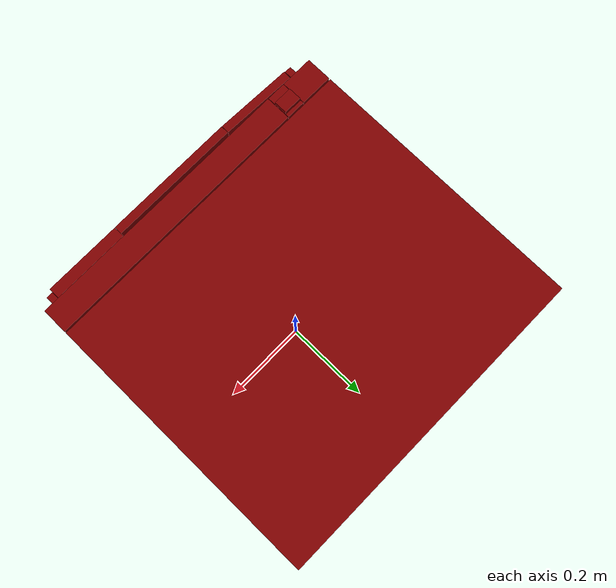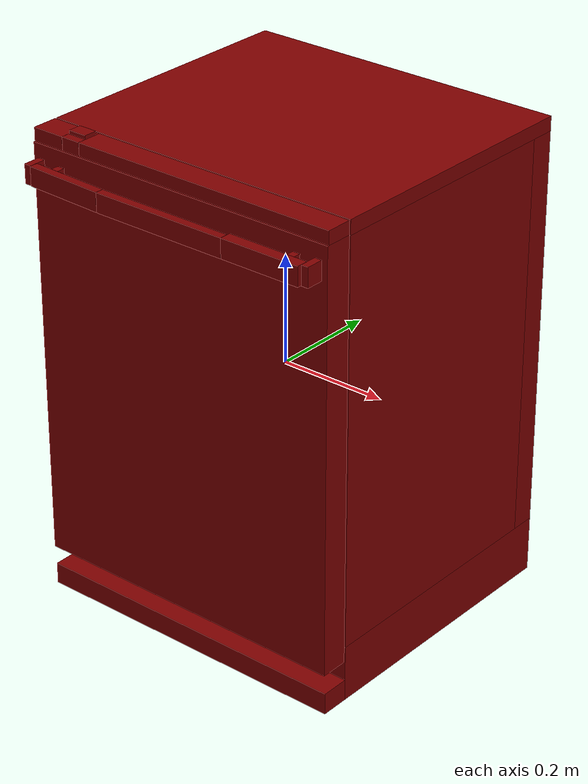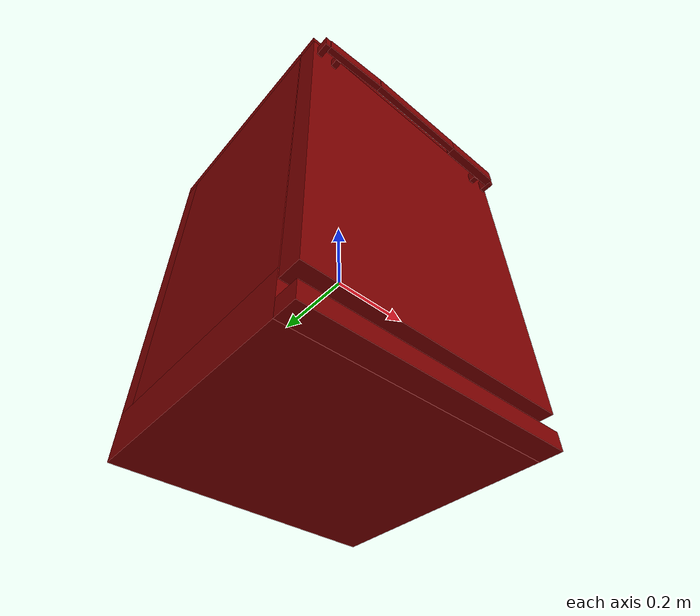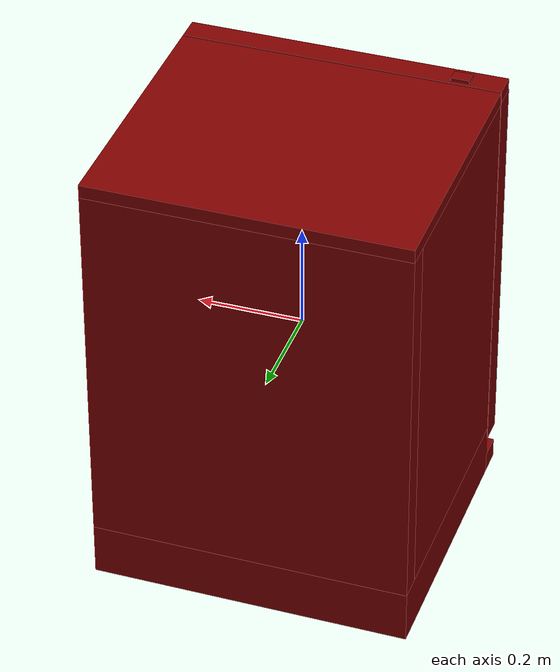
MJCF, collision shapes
<mujoco model="model">
  <compiler angle="radian"/>
  <asset>
    <mesh file="visuals/Body001.obj" name="Body001_vis"/>
    <mesh file="visuals/Button001.obj" name="Button001_vis"/>
    <mesh file="visuals/Container001.obj" name="Container001_vis"/>
    <mesh file="visuals/Container002.obj" name="Container002_vis"/>
    <mesh file="visuals/Door001.obj" name="Door001_vis"/>
    <mesh file="visuals/Handle001.obj" name="Handle001_vis"/>
    <texture file="visuals/T_BC001.png" name="Body001_material" type="2d"/>
    <material name="Body001_material" rgba="1 1 1 1.0" texture="Body001_material" shininess="0.4472135901451111" specular="0.3103448502657381"/>
    <texture file="visuals/T_BC001.png" name="Container001_material" type="2d"/>
    <material name="Container001_material" rgba="1 1 1 1.0" texture="Container001_material" shininess="0.4472135901451111" specular="0.3103448502657381"/>
    <texture file="visuals/T_BC001.png" name="Container002_material" type="2d"/>
    <material name="Container002_material" rgba="1 1 1 1.0" texture="Container002_material" shininess="0.4472135901451111" specular="0.3103448502657381"/>
    <texture file="visuals/T_BC001.png" name="Door001_material" type="2d"/>
    <material name="Door001_material" rgba="1 1 1 1.0" texture="Door001_material" shininess="0.4472135901451111" specular="0.3103448502657381"/>
    <texture file="visuals/T_BC001.png" name="Button001_material" type="2d"/>
    <material name="Button001_material" rgba="1 1 1 1.0" texture="Button001_material" shininess="0.4472135901451111" specular="0.3103448502657381"/>
    <texture file="visuals/T_BC001.png" name="Handle001_material" type="2d"/>
    <material name="Handle001_material" rgba="1 1 1 1.0" texture="Handle001_material" shininess="0.4472135901451111" specular="0.3103448502657381"/>
  </asset>
  <default>
    <default class="visual">
      <geom conaffinity="0" contype="0" group="1" type="mesh"/>
    </default>
    <default class="collision">
      <geom group="0" rgba="0.5 0 0 0.5"/>
    </default>
    <default class="spawn">
      <geom group="0" rgba="1 1 1 0.5" contype="0" conaffinity="0"/>
      <site group="0" rgba="1 1 1 0.5"/>
    </default>
    <default class="region">
      <geom group="1" conaffinity="0" contype="0" rgba="0 1 0 0"/>
    </default>
  </default>
  <worldbody>
    <body>
      <body name="object">
        <geom mesh="Body001_vis" type="mesh" solimp="0.998 0.998 0.001" solref="0.001 1" density="100" friction="0.95 0.3 0.1" class="visual" material="Body001_material"/>
        <geom class="collision" type="box" pos="0.000000 0.046589 -0.382991" size="0.30250000953674316 0.2580483555793762 0.051565688103437424" quat="1.0 0.0 0.0 0.0"/>
        <geom class="collision" type="box" pos="0.000000 -0.236857 -0.414884" size="0.30250000953674316 0.02539755403995514 0.019671276211738586" quat="1.0 0.0 0.0 0.0"/>
        <geom class="collision" type="box" pos="0.000000 0.046589 0.415111" size="0.30250000953674316 0.2580483555793762 0.013000245206058025" quat="1.0 0.0 0.0 0.0"/>
        <geom class="collision" type="box" pos="0.000000 0.281730 0.035343" size="0.30250000953674316 0.02290758490562439 0.366775780916214" quat="1.0 0.0 0.0 0.0"/>
        <geom class="collision" type="box" pos="-0.289000 0.023582 0.035343" size="0.013499995693564415 0.23523996770381927 0.3667754828929901" quat="1.0 0.0 0.0 0.0"/>
        <geom class="collision" type="box" pos="0.289000 0.023582 0.035343" size="0.013499986380338669 0.23523996770381927 0.36677518486976624" quat="1.0 0.0 0.0 0.0"/>
        <body name="Container001">
          <joint axis="0.0 -1.0 0.0" pos="0.000000 0.029861 0.205880" limited="true" name="Container001_joint" range="0.0 0.3" type="slide" damping="1" frictionloss="1" armature=".01" stiffness="0.05"/>
          <geom mesh="Container001_vis" type="mesh" solimp="0.998 0.998 0.001" solref="0.001 1" density="100" friction="0.95 0.3 0.1" class="visual" material="Container001_material"/>
          <geom class="collision" type="box" pos="-0.258727 0.030196 0.217380" size="0.008707686327397823 0.21144571900367737 0.04207874462008476" quat="1.0 0.0 0.0 0.0"/>
          <geom class="collision" type="box" pos="0.258727 0.030196 0.217380" size="0.008707686327397823 0.21144571900367737 0.04207874462008476" quat="1.0 0.0 0.0 0.0"/>
          <geom class="collision" type="box" pos="-0.000000 0.029861 0.164404" size="0.2668638825416565 0.2117791473865509 0.010897202417254448" quat="1.0 0.0 0.0 0.0"/>
          <geom class="collision" type="box" pos="0.000000 0.231723 0.217380" size="0.25001880526542664 0.008707697503268719 0.04207874462008476" quat="1.0 0.0 0.0 0.0"/>
          <geom class="collision" type="box" pos="0.000000 -0.172030 0.217380" size="0.25001880526542664 0.008707697503268719 0.04207874462008476" quat="1.0 0.0 0.0 0.0"/>
        </body>
        <body name="Container002">
          <joint axis="0.0 -1.0 0.0" pos="0.000000 0.029861 -0.046931" limited="true" name="Container002_joint" range="0.0 0.18" type="slide" damping="1" frictionloss="1" armature=".01" stiffness="0.05"/>
          <geom mesh="Container002_vis" type="mesh" solimp="0.998 0.998 0.001" solref="0.001 1" density="100" friction="0.95 0.3 0.1" class="visual" material="Container002_material"/>
          <geom class="collision" type="box" pos="0.000000 -0.172030 -0.035367" size="0.25001880526542664 0.008707697503268719 0.04207874462008476" quat="1.0 0.0 0.0 0.0"/>
          <geom class="collision" type="box" pos="0.000000 0.231723 -0.035367" size="0.25001880526542664 0.008707697503268719 0.04207874462008476" quat="1.0 0.0 0.0 0.0"/>
          <geom class="collision" type="box" pos="-0.000000 0.029861 -0.088343" size="0.2668643891811371 0.21177954971790314 0.010897227562963963" quat="1.0 0.0 0.0 0.0"/>
          <geom class="collision" type="box" pos="0.258727 0.030196 -0.035367" size="0.008707686327397823 0.21144571900367737 0.04207874462008476" quat="1.0 0.0 0.0 0.0"/>
          <geom class="collision" type="box" pos="-0.258727 0.030196 -0.035367" size="0.008707686327397823 0.21144571900367737 0.04207874462008476" quat="1.0 0.0 0.0 0.0"/>
        </body>
        <body name="Door001">
          <joint axis="1.0 0.0 0.0" pos="0.000000 -0.213533 -0.358367" limited="true" name="Door001_joint" range="0.0 0.5235987755982988" type="hinge" damping="1" frictionloss="1" armature=".01" stiffness="2" springref="-5"/>
          <geom mesh="Door001_vis" type="mesh" solimp="0.998 0.998 0.001" solref="0.001 1" density="100" friction="0.95 0.3 0.1" class="visual" material="Door001_material"/>
          <geom class="collision" type="box" pos="0.000000 -0.239846 0.022851" size="0.30250000953674316 0.025127923116087914 0.381262868642807" quat="1.0 0.0 0.0 0.0"/>
          <geom class="collision" type="box" pos="0.049053 -0.238369 0.416055" size="0.25344666838645935 0.02365121990442276 0.012054849416017532" quat="1.0 0.0 0.0 0.0"/>
          <geom class="collision" type="box" pos="-0.271880 -0.238369 0.416055" size="0.03062000870704651 0.02365121990442276 0.01205484103411436" quat="1.0 0.0 0.0 0.0"/>
          <geom class="collision" type="box" pos="-0.222871 -0.217959 0.416055" size="0.017939982935786247 0.003241129219532013 0.012054831720888615" quat="1.0 0.0 0.0 0.0"/>
          <geom class="collision" type="box" pos="-0.222871 -0.254440 0.416055" size="0.017939982935786247 0.00758080929517746 0.012054822407662868" quat="1.0 0.0 0.0 0.0"/>
          <body name="Button001">
            <joint axis="0.0 0.0 -1.0" pos="-0.222603 -0.234002 0.430914" limited="true" name="Button001_joint" range="0.0 0.005" type="slide" damping="1" frictionloss="1" armature=".01" stiffness="0.1" springref="-1"/>
            <geom mesh="Button001_vis" type="mesh" solimp="0.998 0.998 0.001" solref="0.001 1" density="100" friction="0.95 0.3 0.1" class="visual" material="Button001_material"/>
            <geom class="collision" type="box" pos="-0.222603 -0.234002 0.430862" size="0.017396679148077965 0.012198508717119694 0.003694238606840372" quat="1.0 0.0 0.0 0.0"/>
          </body>
          <body name="Handle001">
            <geom mesh="Handle001_vis" type="mesh" solimp="0.998 0.998 0.001" solref="0.001 1" density="100" friction="0.95 0.3 0.1" class="visual" material="Handle001_material"/>
            <geom class="collision" type="box" pos="-0.285781 -0.281615 0.361761" size="0.0065482985228300095 0.015649866312742233 0.017256762832403183" quat="1.0 0.0 0.0 0.0"/>
            <geom class="collision" type="box" pos="0.000000 -0.296964 0.361761" size="0.1282983124256134 0.007673845160752535 0.017256801947951317" quat="1.0 0.0 0.0 0.0"/>
            <geom class="collision" type="box" pos="-0.203537 -0.293917 0.361761" size="0.07475481927394867 0.0076738446950912476 0.017256801947951317" quat="0.9998188018798828 0.0 -0.0 -0.019036756828427315"/>
            <geom class="collision" type="box" pos="0.203537 -0.293917 0.361761" size="0.07499274611473083 0.01051395945250988 0.017256831750273705" quat="1.0 0.0 0.0 0.0"/>
            <geom class="collision" type="box" pos="0.285780 -0.281615 0.361761" size="0.006548300851136446 0.015649886801838875 0.017256760969758034" quat="1.0 0.0 0.0 0.0"/>
            <geom class="collision" type="box" pos="-0.243164 -0.275023 0.361223" size="0.0067917644046247005 0.009905099868774414 0.014603598974645138" quat="1.0 0.0 0.0 0.0"/>
            <geom class="collision" type="box" pos="0.243164 -0.275023 0.361223" size="0.0067917644046247005 0.009905099868774414 0.014603598974645138" quat="1.0 0.0 0.0 0.0"/>
          </body>
        </body>
        <geom class="region" name="reg_main" type="box" pos="0.0 0.021191500000000002 -0.0032220000000000026" size="0.3015 0.2834455 0.431333"/>
        <geom class="region" name="reg_int" type="box" pos="0.001506499999999994 0.024435499999999985 0.035622000000000015" size="0.27329749999999997 0.23314249999999997 0.365378"/>
      </body>
    </body>
  </worldbody>
  <actuator>
    <motor name="Container001_joint_actuator" joint="Container001_joint" gear="10"/>
    <motor name="Container002_joint_actuator" joint="Container002_joint" gear="10"/>
    <motor name="Door001_joint_actuator" joint="Door001_joint" gear="50"/>
    <motor name="Button001_joint_actuator" joint="Button001_joint" gear="0.5"/>
  </actuator>
</mujoco>
